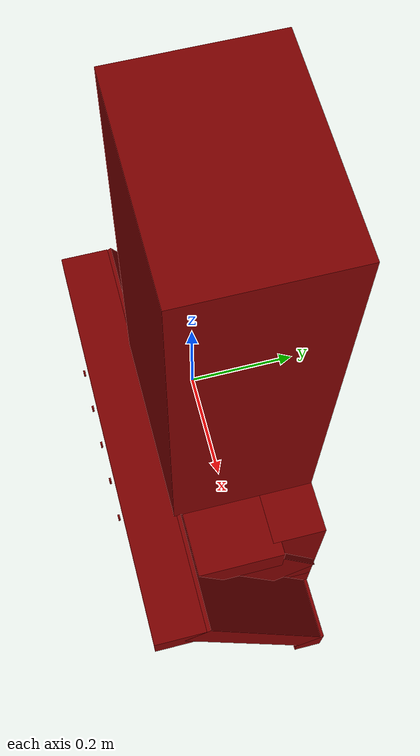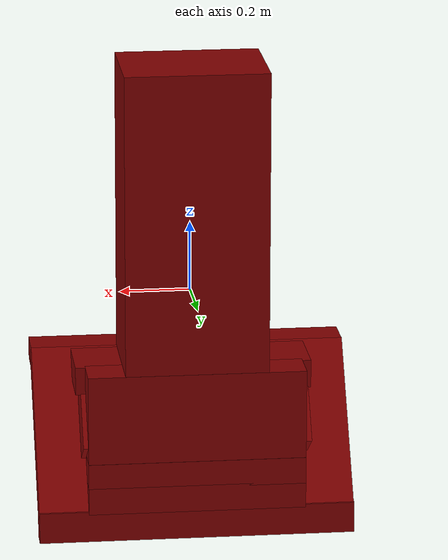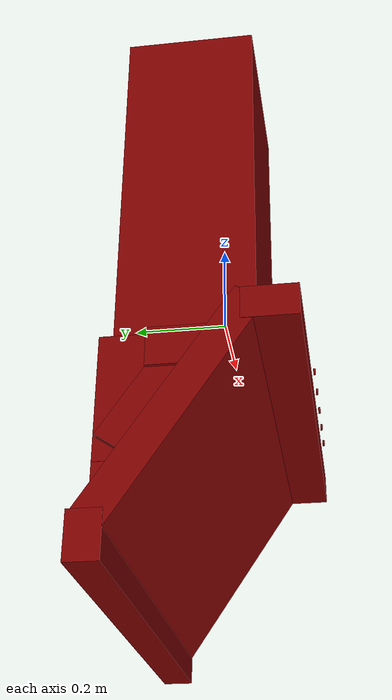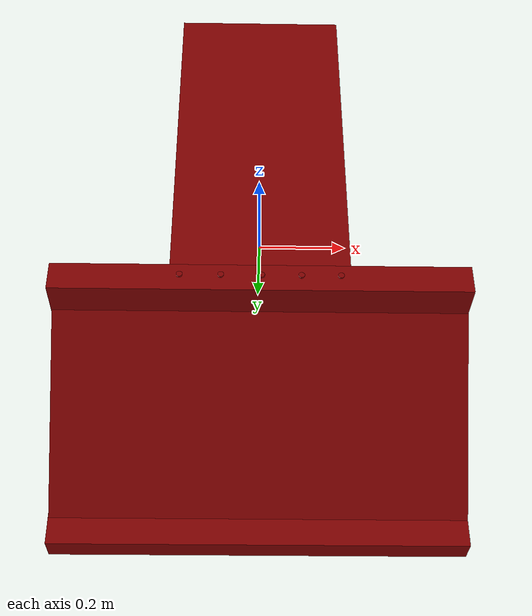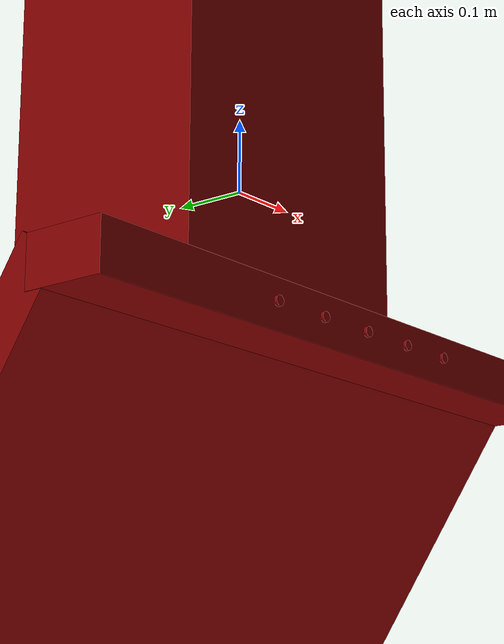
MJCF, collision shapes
<?xml version='1.0' encoding='UTF-8'?>
<mujoco model="model">
  <compiler angle="radian"/>
  <asset>
    <mesh file="visuals/Body001.obj" name="Body001_vis"/>
    <mesh file="visuals/Button001.obj" name="Button001_vis"/>
    <mesh file="visuals/Button002.obj" name="Button002_vis"/>
    <mesh file="visuals/Button003.obj" name="Button003_vis"/>
    <mesh file="visuals/Button004.obj" name="Button004_vis"/>
    <mesh file="visuals/Button005.obj" name="Button005_vis"/>
    <texture file="visuals/T_BC001.png" name="Body001_material" type="2d"/>
    <material name="Body001_material" rgba="1 1 1 1.0" texture="Body001_material" shininess="0.141421377658844" specular="0.3103448502657381"/>
    <texture file="visuals/T_BC001.png" name="Button001_material" type="2d"/>
    <material name="Button001_material" rgba="1 1 1 1.0" texture="Button001_material" shininess="0.141421377658844" specular="0.3103448502657381"/>
    <texture file="visuals/T_BC001.png" name="Button002_material" type="2d"/>
    <material name="Button002_material" rgba="1 1 1 1.0" texture="Button002_material" shininess="0.141421377658844" specular="0.3103448502657381"/>
    <texture file="visuals/T_BC001.png" name="Button003_material" type="2d"/>
    <material name="Button003_material" rgba="1 1 1 1.0" texture="Button003_material" shininess="0.141421377658844" specular="0.3103448502657381"/>
    <texture file="visuals/T_BC001.png" name="Button004_material" type="2d"/>
    <material name="Button004_material" rgba="1 1 1 1.0" texture="Button004_material" shininess="0.141421377658844" specular="0.3103448502657381"/>
    <texture file="visuals/T_BC001.png" name="Button005_material" type="2d"/>
    <material name="Button005_material" rgba="1 1 1 1.0" texture="Button005_material" shininess="0.141421377658844" specular="0.3103448502657381"/>
  </asset>
  <default>
    <default class="visual">
      <geom conaffinity="0" contype="0" group="1" type="mesh"/>
    </default>
    <default class="collision">
      <geom group="0" rgba="0.5 0 0 0.5"/>
    </default>
    <default class="spawn">
      <geom group="0" rgba="1 1 1 0.5" contype="0" conaffinity="0"/>
      <site group="0" rgba="1 1 1 0.5"/>
    </default>
    <default class="region">
      <geom group="1" conaffinity="0" contype="0" rgba="0 1 0 0"/>
    </default>
  </default>
  <worldbody>
    <body>
      <body name="object">
        <geom mesh="Body001_vis" type="mesh" solimp="0.998 0.998 0.001" solref="0.001 1" density="100" friction="0.95 0.3 0.1" class="visual" material="Body001_material"/>
        <geom class="collision" type="box" pos="0.000669 0.033546 -0.405528" size="0.4479215443134308 0.24603599309921265 0.031694505363702774" quat="0.882147490978241 -0.47097328305244446 1.0403968710015132e-16 -2.8502211480588545e-19"/>
        <geom class="collision" type="box" pos="0.000335 0.055192 0.241410" size="0.20281653106212616 0.14591030776500702 0.43344056606292725" quat="1.0 0.0 0.0 0.0"/>
        <geom class="collision" type="box" pos="-0.000000 0.169420 -0.631414" size="0.4483370780944824 0.031127022579312325 0.04460078105330467" quat="1.0 0.0 0.0 0.0"/>
        <geom class="collision" type="box" pos="-0.000000 -0.138144 -0.219603" size="0.4483370780944824 0.05307907611131668 0.03169449791312218" quat="1.0 0.0 0.0 0.0"/>
        <geom class="collision" type="box" pos="-0.001785 0.077027 -0.335474" size="0.32393988966941833 0.06334581226110458 0.11842090636491776" quat="0.9568553566932678 0.29056471586227417 0.0 0.0"/>
        <geom class="collision" type="box" pos="-0.000051 0.173229 -0.556374" size="0.30869561433792114 0.028240203857421875 0.03860531374812126" quat="1.0 0.0 0.0 0.0"/>
        <geom class="collision" type="box" pos="-0.000051 0.153358 -0.484176" size="0.30869561433792114 0.04811130836606026 0.03860531374812126" quat="1.0 0.0 0.0 0.0"/>
        <geom class="collision" type="box" pos="-0.000051 0.145741 -0.316596" size="0.30869561433792114 0.05572855472564697 0.12868766486644745" quat="1.0 0.0 0.0 0.0"/>
        <geom class="collision" type="box" pos="0.001686 0.016751 -0.228170" size="0.3348701596260071 0.08984062075614929 0.04026122763752937" quat="1.0 0.0 0.0 0.0"/>
        <body name="Button001">
          <joint axis="0.0 1.0 0.0" pos="-0.171879 -0.199553 -0.219038" limited="true" name="Button001_joint" range="0.0 0.002" type="slide" damping="1" frictionloss="1" armature=".01" stiffness="0.05"/>
          <geom mesh="Button001_vis" type="mesh" solimp="0.998 0.998 0.001" solref="0.001 1" density="100" friction="0.95 0.3 0.1" class="visual" material="Button001_material"/>
          <geom class="collision" type="cylinder" pos="-0.171879 -0.199499 -0.219038" size="0.006602177862077951 0.0019707230385392904" quat="0.7071068286895752 0.7071067690849304 0.0 0.0"/>
        </body>
        <body name="Button002">
          <joint axis="0.0 1.0 0.0" pos="-0.084945 -0.199553 -0.219038" limited="true" name="Button002_joint" range="0.0 0.002" type="slide" damping="1" frictionloss="1" armature=".01" stiffness="0.05"/>
          <geom mesh="Button002_vis" type="mesh" solimp="0.998 0.998 0.001" solref="0.001 1" density="100" friction="0.95 0.3 0.1" class="visual" material="Button002_material"/>
          <geom class="collision" type="cylinder" pos="-0.085035 -0.199499 -0.219038" size="0.006602177862077951 0.0019707230385392904" quat="0.7071068286895752 0.7071067690849304 0.0 0.0"/>
        </body>
        <body name="Button003">
          <joint axis="0.0 1.0 0.0" pos="0.001236 -0.199553 -0.219038" limited="true" name="Button003_joint" range="0.0 0.002" type="slide" damping="1" frictionloss="1" armature=".01" stiffness="0.05"/>
          <geom mesh="Button003_vis" type="mesh" solimp="0.998 0.998 0.001" solref="0.001 1" density="100" friction="0.95 0.3 0.1" class="visual" material="Button003_material"/>
          <geom class="collision" type="cylinder" pos="0.001239 -0.199499 -0.219038" size="0.006602177862077951 0.0019707230385392904" quat="0.7071068286895752 0.7071067690849304 0.0 0.0"/>
        </body>
        <body name="Button004">
          <joint axis="0.0 1.0 0.0" pos="0.085166 -0.199553 -0.219038" limited="true" name="Button004_joint" range="0.0 0.002" type="slide" damping="1" frictionloss="1" armature=".01" stiffness="0.05"/>
          <geom mesh="Button004_vis" type="mesh" solimp="0.998 0.998 0.001" solref="0.001 1" density="100" friction="0.95 0.3 0.1" class="visual" material="Button004_material"/>
          <geom class="collision" type="cylinder" pos="0.085176 -0.199499 -0.219038" size="0.006602177862077951 0.0019707230385392904" quat="0.7071068286895752 0.7071067690849304 0.0 0.0"/>
        </body>
        <body name="Button005">
          <joint axis="0.0 1.0 0.0" pos="0.168235 -0.199553 -0.219038" limited="true" name="Button005_joint" range="0.0 0.002" type="slide" damping="1" frictionloss="1" armature=".01" stiffness="0.05"/>
          <geom mesh="Button005_vis" type="mesh" solimp="0.998 0.998 0.001" solref="0.001 1" density="100" friction="0.95 0.3 0.1" class="visual" material="Button005_material"/>
          <geom class="collision" type="cylinder" pos="0.168255 -0.199499 -0.219038" size="0.006602177862077951 0.0019707230385392904" quat="0.7071068286895752 0.7071067690849304 0.0 0.0"/>
        </body>
        <geom class="region" name="reg_main" type="box" pos="0.00033550000000001634 -0.001009999999999997 0.0" size="0.44750049999999997 0.20042100000000002 0.676163"/>
      </body>
    </body>
  </worldbody>
  <actuator>
    <motor name="Button001_joint_actuator" joint="Button001_joint" gear="0.2"/>
    <motor name="Button002_joint_actuator" joint="Button002_joint" gear="0.2"/>
    <motor name="Button003_joint_actuator" joint="Button003_joint" gear="0.2"/>
    <motor name="Button004_joint_actuator" joint="Button004_joint" gear="0.2"/>
    <motor name="Button005_joint_actuator" joint="Button005_joint" gear="0.2"/>
  </actuator>
</mujoco>
